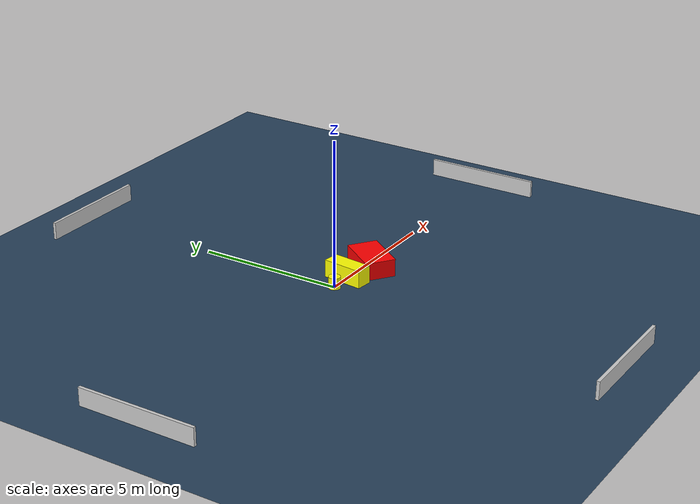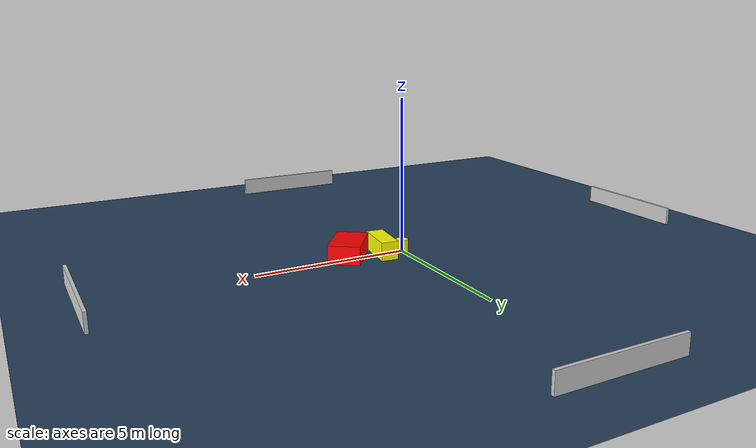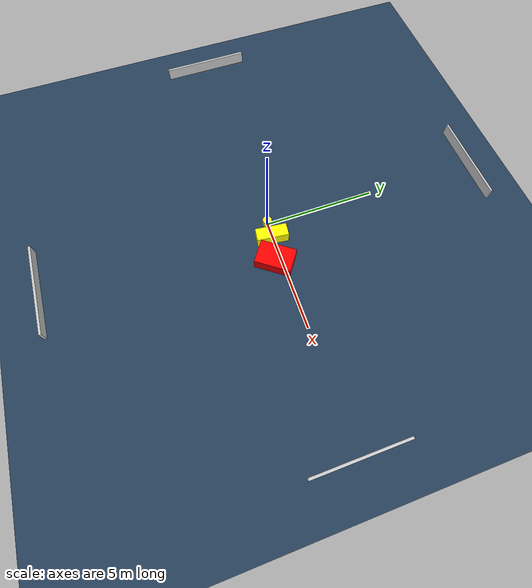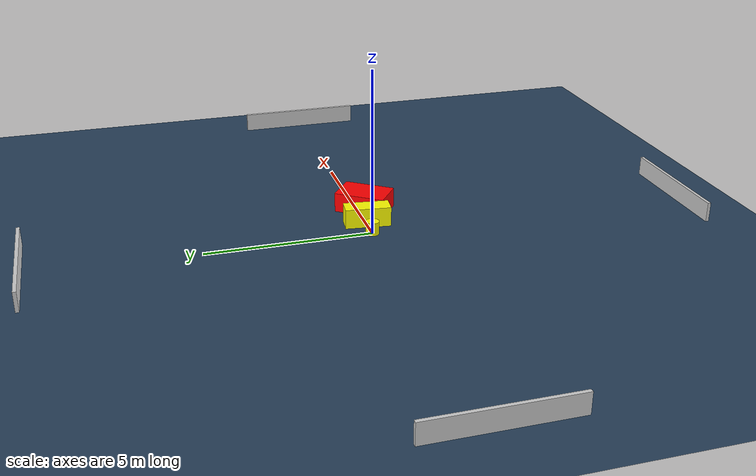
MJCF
<?xml version="1.0" ?>
<mujoco model="generated_environment">
  <option timestep="0.01" integrator="RK4" cone="elliptic"/>
  <default>
    <geom density="1"/>
  </default>
  <asset>
    <texture builtin="gradient" height="3072" name="skybox" rgb1="0.3 0.5 0.7" rgb2="0 0 0" type="skybox" width="512"/>
    <texture builtin="checker" height="300" name="groundplane" rgb1="0.2 0.3 0.4" rgb2="0.1 0.2 0.3" type="2d" width="300"/>
    <material name="groundplane" reflectance="0.2" texrepeat="5 5" texture="groundplane"/>
  </asset>
  <worldbody>
    <light dir="0 0 -1" directional="true" pos="0 0 1.5"/>
    <geom condim="3" friction="0.5 0.005 0.001" material="groundplane" name="floor" pos="0 0 0" size="0 0 0.05" type="plane"/>
    <body name="walls">
      <geom name="wall_1" condim="4" pos="-10.0 0.0 0.3" rgba="0.800000011920929 0.800000011920929 0.800000011920929 1.0" size="0.05 2.0 0.3" type="box"/>
      <geom name="wall_2" condim="4" pos="10.0 0.0 0.3" rgba="0.800000011920929 0.800000011920929 0.800000011920929 1.0" size="0.05 2.0 0.3" type="box"/>
      <geom name="wall_3" condim="4" pos="0.0 -10.0 0.3" rgba="0.800000011920929 0.800000011920929 0.800000011920929 1.0" size="2.0 0.05 0.3" type="box"/>
      <geom name="wall_4" condim="4" pos="0.0 10.0 0.3" rgba="0.800000011920929 0.800000011920929 0.800000011920929 1.0" size="2.0 0.05 0.3" type="box"/>
    </body>
    <body name="robot">
      <joint name="joint_x" type="slide" pos="0 0 0" axis="1 0 0"/>
      <joint name="joint_y" type="slide" pos="0 0 0" axis="0 1 0"/>
      <geom name="robot" type="cylinder" pos="0.0 0.0 0.2" size="0.2 0.2 0.0" mass="5.0" friction="1.0 0.005 0.0001" condim="4" rgba="1.0 1.0 0.0 1.0"/>
    </body>
    <body name="obstacle_1_movable">
      <geom name="obstacle_1_movable" condim="4" pos="0.7119511251291232 -0.033921769714328386 0.3" euler="0 0 173.4377463429538" friction="0.0 0.005 0.001" rgba="1.0 1.0 0.0 1.0" size="0.27953487051245013 0.691456438358572 0.3" type="box" mass="0.1"/>
      <joint type="free"/>
    </body>
    <body name="obstacle_2_static">
      <geom name="obstacle_2_static" condim="4" pos="1.8127611274686937 -0.2612651802926318 0.3" euler="0 0 234.0363049187557" friction="0.0 0.005 0.001" rgba="1.0 0.0 0.0 1.0" size="0.786385108802935 0.5146690985327671 0.3" type="box"/>
    </body>
  </worldbody>
  <actuator>
    <motor name="actuator_x" joint="joint_x" gear="1" ctrlrange="-1 1"/>
    <motor name="actuator_y" joint="joint_y" gear="1" ctrlrange="-1 1"/>
  </actuator>
</mujoco>
